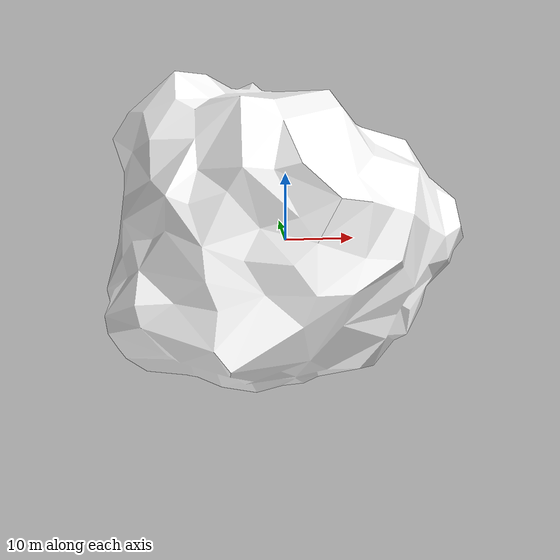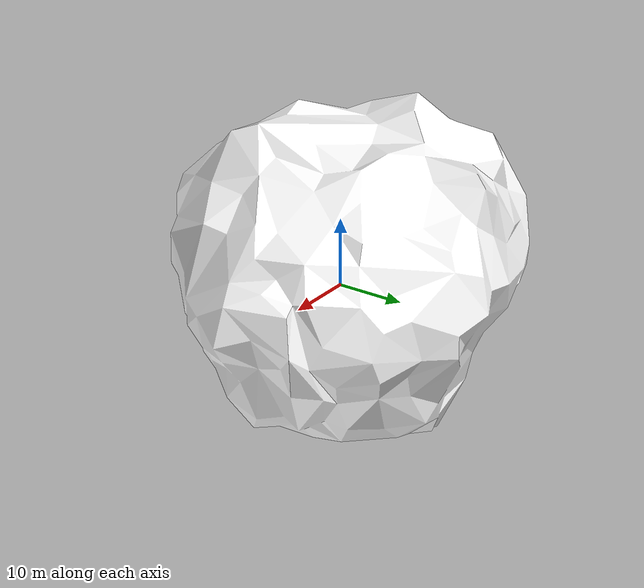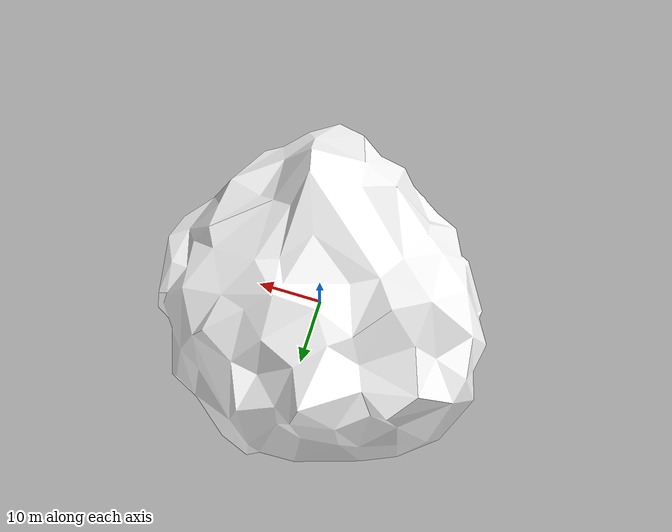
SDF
<?xml version="1.0" ?>
<sdf version="1.6">
    <model name="falling_rock1">
        <link name="base_link">
            <inertial>
                <pose>-0.056101 0.007340 0.020250 0 0 0</pose>
                <mass>2569.46</mass>
                <inertia>
                    <ixx>466.314</ixx>
                    <ixy>6.554</ixy>
                    <ixz>-0.846</ixz>
                    <iyy>479.238</iyy>
                    <iyz>-5.226</iyz>
                    <izz>499.184</izz>
                </inertia>
            </inertial>
            <collision name="collision">
                <geometry>
                    <mesh>
                        <scale>35 35 35</scale>
            <uri>meshes/FallingRock01_Collider.dae</uri>
                    </mesh>
                </geometry>
            </collision>
            <visual name="visual">
                <geometry>
                    <mesh>
                        <scale>35 35 35</scale>
            <uri>meshes/FallingRock01.dae</uri>
                    </mesh>
                </geometry>
                <material>
                    <diffuse>1.0 1.0 1.0</diffuse>
                    <specular>1.0 1.0 1.0</specular>
                    <pbr>
                        <metal>
                            <albedo_map>https://fuel.gazebosim.org/1.0/openrobotics/models/falling rock 1/6/files/materials/textures/FallingRocks_Albedo.jpg</albedo_map>
                            <normal_map>https://fuel.gazebosim.org/1.0/openrobotics/models/falling rock 1/6/files/materials/textures/FallingRocks_Normal.jpg</normal_map>
                            <roughness_map>https://fuel.gazebosim.org/1.0/openrobotics/models/falling rock 1/6/files/materials/textures/FallingRocks_Roughness.jpg</roughness_map>
                        </metal>
                    </pbr>
                    <!-- fallback to script if no PBR support-->
                    <script>
                        <uri>https://fuel.gazebosim.org/1.0/openrobotics/models/falling rock 1/6/files/materials/scripts</uri>
                        <uri>https://fuel.gazebosim.org/1.0/openrobotics/models/falling rock 1/6/files/materials/textures</uri>
                        <name>FallingRocks/FallingRocks_Diffuse</name>
                    </script>
                </material>
            </visual>
        </link>
    </model>
</sdf>
